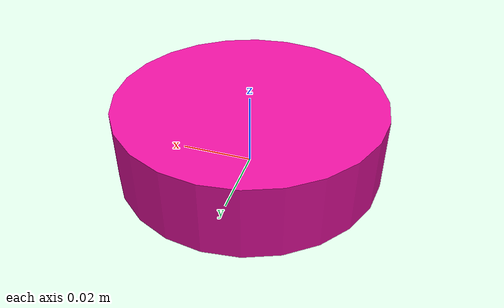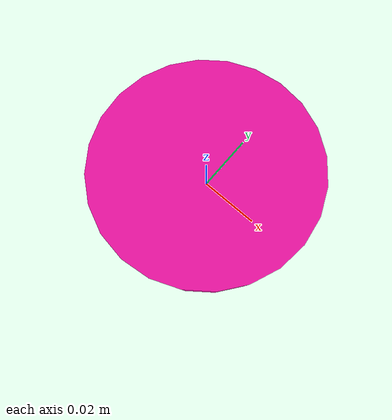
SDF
<sdf version="1.7">
  <model name="disc_36">
    <link name="base_link">
      <inertial>
        <mass>0.05</mass>
        <inertia>
          <ixx>7.91e-06</ixx>
          <ixy>0</ixy>
          <ixz>0</ixz>
          <iyy>7.91e-06</iyy>
          <iyz>0</iyz>
          <izz>1.56e-05</izz>
        </inertia>
        <pose>0 0 0.0025 0 0 0</pose>
      </inertial>
      <pose>0 0 0 0 0 0</pose>
      <visual name="visual">
        <pose>0 0 0.01 0 0 0</pose>
        <geometry>
            <cylinder>
              <radius>0.036000000000000004</radius>
              <length>0.02</length>
            </cylinder>
        </geometry>
        <material>
          <diffuse>0.9316446336798893 0.07233529169017106 0.6407006777438498 1</diffuse>
        </material>
      </visual>
      <collision name="collision">
        <pose>0 0 0.01 0 0 0</pose>
        <geometry>
            <cylinder>
              <radius>0.036000000000000004</radius>
              <length>0.02</length>
            </cylinder>
        </geometry>
      </collision>
      <collision name="ball1">
        <pose>0.02545584412271571 0.02545584412271571 0 0 0 0</pose>
        <geometry>
          <sphere>
            <radius>1e-07</radius>
          </sphere>
        </geometry>
      </collision>
      <collision name="ball2">
        <pose>-0.02545584412271571 0.02545584412271571 0 0 0 0</pose>
        <geometry>
          <sphere>
            <radius>1e-07</radius>
          </sphere>
        </geometry>
      </collision>
      <collision name="ball3">
        <pose>0.02545584412271571 -0.02545584412271571 0 0 0 0</pose>
        <geometry>
          <sphere>
            <radius>1e-07</radius>
          </sphere>
        </geometry>
      </collision>
      <collision name="ball4">
        <pose>-0.02545584412271571 -0.02545584412271571 0 0 0 0</pose>
        <geometry>
          <sphere>
            <radius>1e-07</radius>
          </sphere>
        </geometry>
      </collision>
    </link>
  </model>
</sdf>
